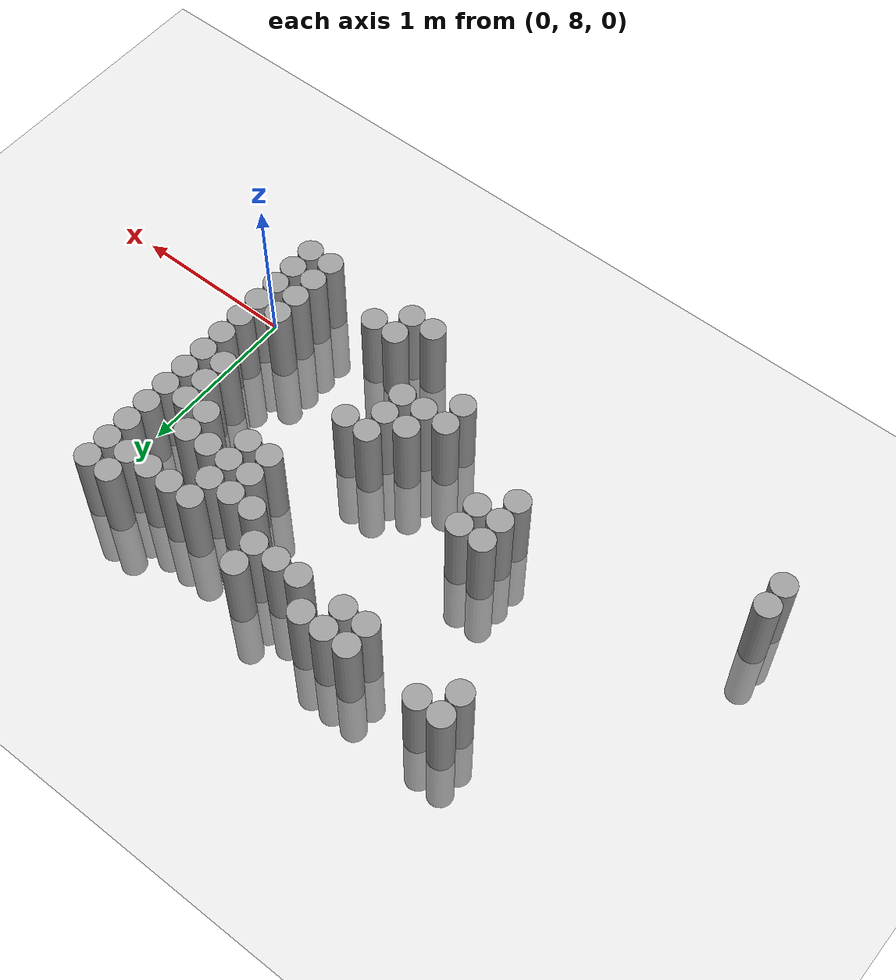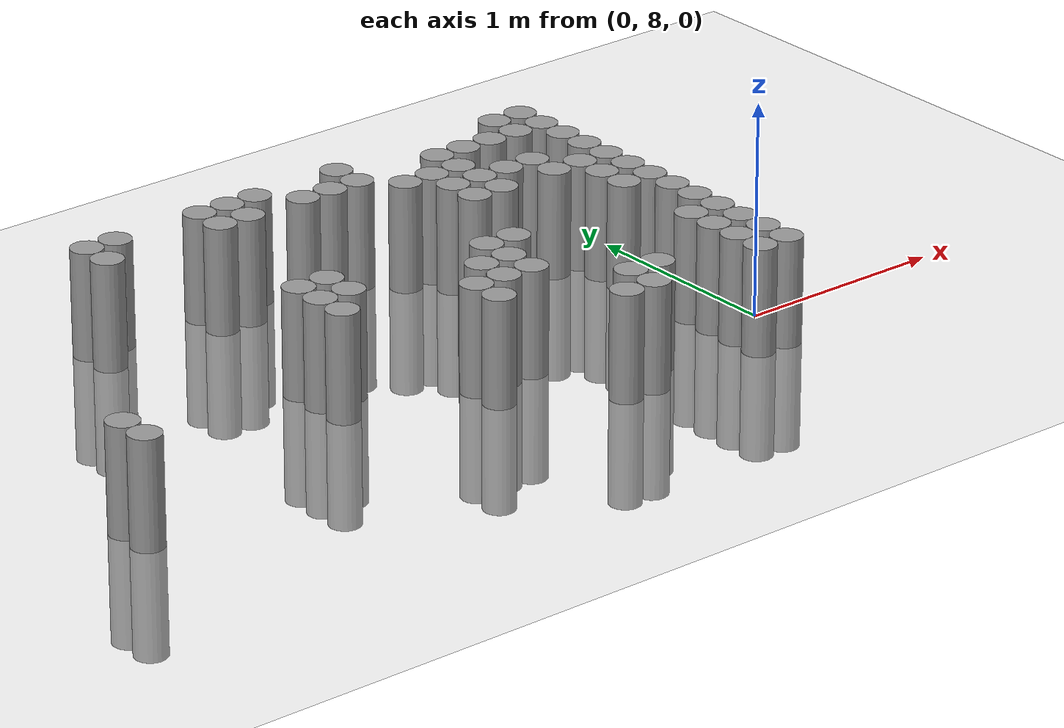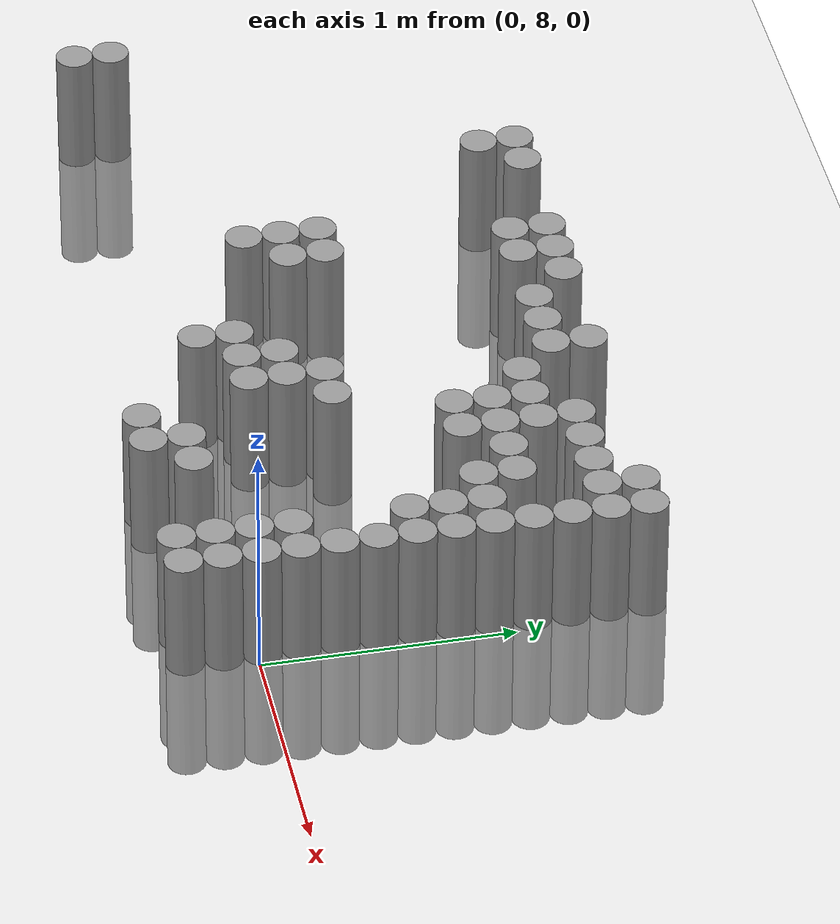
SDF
<sdf version="1.6">
 <world name="default">
  <model name="ground_plane">
   <static>1</static>
   <link name="link">
    <collision name="collision">
     <geometry><plane><normal>0 0 1</normal><size>100 100</size></plane></geometry>
     <surface><friction><ode><mu>100</mu><mu2>50</mu2></ode></friction></surface>
    </collision>
    <visual name="visual">
     <cast_shadows>0</cast_shadows>
     <geometry><plane><normal>0 0 1</normal><size>100 100</size></plane></geometry>
     <material>
      <script><uri>file://media/materials/scripts/gazebo.material</uri><name>Gazebo/Grey</name></script>
     </material>
    </visual>
   </link>
  </model>
  <model name="unit_cylinder_178">
   <pose>-3.375000 7.875000 0.000000 0.000000 0.000000 0.000000</pose>
   <link name="link">
    <inertial>
     <mass>1</mass>
     <inertia><ixx>0.145833</ixx><ixy>0</ixy><ixz>0</ixz><iyy>0.145833</iyy><iyz>0</iyz><izz>0.125</izz></inertia>
    </inertial>
    <collision name="collision">
     <geometry><cylinder><radius>0.075000</radius><length>1</length></cylinder></geometry>
    </collision>
    <visual name="visual">
     <geometry><cylinder><radius>0.075000</radius><length>1</length></cylinder></geometry>
     <material>
      <script><name>Gazebo/Grey</name><uri>file://media/materials/scripts/gazebo.material</uri></script>
     </material>
    </visual>
   </link>
  </model>
  <model name="unit_cylinder_179">
   <pose>-3.375000 8.025000 0.000000 0.000000 0.000000 0.000000</pose>
   <link name="link">
    <inertial>
     <mass>1</mass>
     <inertia><ixx>0.145833</ixx><ixy>0</ixy><ixz>0</ixz><iyy>0.145833</iyy><iyz>0</iyz><izz>0.125</izz></inertia>
    </inertial>
    <collision name="collision">
     <geometry><cylinder><radius>0.075000</radius><length>1</length></cylinder></geometry>
    </collision>
    <visual name="visual">
     <geometry><cylinder><radius>0.075000</radius><length>1</length></cylinder></geometry>
     <material>
      <script><name>Gazebo/Grey</name><uri>file://media/materials/scripts/gazebo.material</uri></script>
     </material>
    </visual>
   </link>
  </model>
  <model name="unit_cylinder_207">
   <pose>-2.475000 9.375000 0.000000 0.000000 0.000000 0.000000</pose>
   <link name="link">
    <inertial>
     <mass>1</mass>
     <inertia><ixx>0.145833</ixx><ixy>0</ixy><ixz>0</ixz><iyy>0.145833</iyy><iyz>0</iyz><izz>0.125</izz></inertia>
    </inertial>
    <collision name="collision">
     <geometry><cylinder><radius>0.075000</radius><length>1</length></cylinder></geometry>
    </collision>
    <visual name="visual">
     <geometry><cylinder><radius>0.075000</radius><length>1</length></cylinder></geometry>
     <material>
      <script><name>Gazebo/Grey</name><uri>file://media/materials/scripts/gazebo.material</uri></script>
     </material>
    </visual>
   </link>
  </model>
  <model name="unit_cylinder_208">
   <pose>-2.475000 9.525000 0.000000 0.000000 0.000000 0.000000</pose>
   <link name="link">
    <inertial>
     <mass>1</mass>
     <inertia><ixx>0.145833</ixx><ixy>0</ixy><ixz>0</ixz><iyy>0.145833</iyy><iyz>0</iyz><izz>0.125</izz></inertia>
    </inertial>
    <collision name="collision">
     <geometry><cylinder><radius>0.075000</radius><length>1</length></cylinder></geometry>
    </collision>
    <visual name="visual">
     <geometry><cylinder><radius>0.075000</radius><length>1</length></cylinder></geometry>
     <material>
      <script><name>Gazebo/Grey</name><uri>file://media/materials/scripts/gazebo.material</uri></script>
     </material>
    </visual>
   </link>
  </model>
  <model name="unit_cylinder_216">
   <pose>-2.325000 9.525000 0.000000 0.000000 0.000000 0.000000</pose>
   <link name="link">
    <inertial>
     <mass>1</mass>
     <inertia><ixx>0.145833</ixx><ixy>0</ixy><ixz>0</ixz><iyy>0.145833</iyy><iyz>0</iyz><izz>0.125</izz></inertia>
    </inertial>
    <collision name="collision">
     <geometry><cylinder><radius>0.075000</radius><length>1</length></cylinder></geometry>
    </collision>
    <visual name="visual">
     <geometry><cylinder><radius>0.075000</radius><length>1</length></cylinder></geometry>
     <material>
      <script><name>Gazebo/Grey</name><uri>file://media/materials/scripts/gazebo.material</uri></script>
     </material>
    </visual>
   </link>
  </model>
  <model name="unit_cylinder_221">
   <pose>-2.025000 8.325000 0.000000 0.000000 0.000000 0.000000</pose>
   <link name="link">
    <inertial>
     <mass>1</mass>
     <inertia><ixx>0.145833</ixx><ixy>0</ixy><ixz>0</ixz><iyy>0.145833</iyy><iyz>0</iyz><izz>0.125</izz></inertia>
    </inertial>
    <collision name="collision">
     <geometry><cylinder><radius>0.075000</radius><length>1</length></cylinder></geometry>
    </collision>
    <visual name="visual">
     <geometry><cylinder><radius>0.075000</radius><length>1</length></cylinder></geometry>
     <material>
      <script><name>Gazebo/Grey</name><uri>file://media/materials/scripts/gazebo.material</uri></script>
     </material>
    </visual>
   </link>
  </model>
  <model name="unit_cylinder_222">
   <pose>-2.025000 8.475000 0.000000 0.000000 0.000000 0.000000</pose>
   <link name="link">
    <inertial>
     <mass>1</mass>
     <inertia><ixx>0.145833</ixx><ixy>0</ixy><ixz>0</ixz><iyy>0.145833</iyy><iyz>0</iyz><izz>0.125</izz></inertia>
    </inertial>
    <collision name="collision">
     <geometry><cylinder><radius>0.075000</radius><length>1</length></cylinder></geometry>
    </collision>
    <visual name="visual">
     <geometry><cylinder><radius>0.075000</radius><length>1</length></cylinder></geometry>
     <material>
      <script><name>Gazebo/Grey</name><uri>file://media/materials/scripts/gazebo.material</uri></script>
     </material>
    </visual>
   </link>
  </model>
  <model name="unit_cylinder_223">
   <pose>-2.025000 8.625000 0.000000 0.000000 0.000000 0.000000</pose>
   <link name="link">
    <inertial>
     <mass>1</mass>
     <inertia><ixx>0.145833</ixx><ixy>0</ixy><ixz>0</ixz><iyy>0.145833</iyy><iyz>0</iyz><izz>0.125</izz></inertia>
    </inertial>
    <collision name="collision">
     <geometry><cylinder><radius>0.075000</radius><length>1</length></cylinder></geometry>
    </collision>
    <visual name="visual">
     <geometry><cylinder><radius>0.075000</radius><length>1</length></cylinder></geometry>
     <material>
      <script><name>Gazebo/Grey</name><uri>file://media/materials/scripts/gazebo.material</uri></script>
     </material>
    </visual>
   </link>
  </model>
  <model name="unit_cylinder_224">
   <pose>-1.875000 8.475000 0.000000 0.000000 0.000000 0.000000</pose>
   <link name="link">
    <inertial>
     <mass>1</mass>
     <inertia><ixx>0.145833</ixx><ixy>0</ixy><ixz>0</ixz><iyy>0.145833</iyy><iyz>0</iyz><izz>0.125</izz></inertia>
    </inertial>
    <collision name="collision">
     <geometry><cylinder><radius>0.075000</radius><length>1</length></cylinder></geometry>
    </collision>
    <visual name="visual">
     <geometry><cylinder><radius>0.075000</radius><length>1</length></cylinder></geometry>
     <material>
      <script><name>Gazebo/Grey</name><uri>file://media/materials/scripts/gazebo.material</uri></script>
     </material>
    </visual>
   </link>
  </model>
  <model name="unit_cylinder_225">
   <pose>-1.875000 8.625000 0.000000 0.000000 0.000000 0.000000</pose>
   <link name="link">
    <inertial>
     <mass>1</mass>
     <inertia><ixx>0.145833</ixx><ixy>0</ixy><ixz>0</ixz><iyy>0.145833</iyy><iyz>0</iyz><izz>0.125</izz></inertia>
    </inertial>
    <collision name="collision">
     <geometry><cylinder><radius>0.075000</radius><length>1</length></cylinder></geometry>
    </collision>
    <visual name="visual">
     <geometry><cylinder><radius>0.075000</radius><length>1</length></cylinder></geometry>
     <material>
      <script><name>Gazebo/Grey</name><uri>file://media/materials/scripts/gazebo.material</uri></script>
     </material>
    </visual>
   </link>
  </model>
  <model name="unit_cylinder_226">
   <pose>-1.875000 9.375000 0.000000 0.000000 0.000000 0.000000</pose>
   <link name="link">
    <inertial>
     <mass>1</mass>
     <inertia><ixx>0.145833</ixx><ixy>0</ixy><ixz>0</ixz><iyy>0.145833</iyy><iyz>0</iyz><izz>0.125</izz></inertia>
    </inertial>
    <collision name="collision">
     <geometry><cylinder><radius>0.075000</radius><length>1</length></cylinder></geometry>
    </collision>
    <visual name="visual">
     <geometry><cylinder><radius>0.075000</radius><length>1</length></cylinder></geometry>
     <material>
      <script><name>Gazebo/Grey</name><uri>file://media/materials/scripts/gazebo.material</uri></script>
     </material>
    </visual>
   </link>
  </model>
  <model name="unit_cylinder_227">
   <pose>-1.875000 9.525000 0.000000 0.000000 0.000000 0.000000</pose>
   <link name="link">
    <inertial>
     <mass>1</mass>
     <inertia><ixx>0.145833</ixx><ixy>0</ixy><ixz>0</ixz><iyy>0.145833</iyy><iyz>0</iyz><izz>0.125</izz></inertia>
    </inertial>
    <collision name="collision">
     <geometry><cylinder><radius>0.075000</radius><length>1</length></cylinder></geometry>
    </collision>
    <visual name="visual">
     <geometry><cylinder><radius>0.075000</radius><length>1</length></cylinder></geometry>
     <material>
      <script><name>Gazebo/Grey</name><uri>file://media/materials/scripts/gazebo.material</uri></script>
     </material>
    </visual>
   </link>
  </model>
  <model name="unit_cylinder_228">
   <pose>-1.725000 9.375000 0.000000 0.000000 0.000000 0.000000</pose>
   <link name="link">
    <inertial>
     <mass>1</mass>
     <inertia><ixx>0.145833</ixx><ixy>0</ixy><ixz>0</ixz><iyy>0.145833</iyy><iyz>0</iyz><izz>0.125</izz></inertia>
    </inertial>
    <collision name="collision">
     <geometry><cylinder><radius>0.075000</radius><length>1</length></cylinder></geometry>
    </collision>
    <visual name="visual">
     <geometry><cylinder><radius>0.075000</radius><length>1</length></cylinder></geometry>
     <material>
      <script><name>Gazebo/Grey</name><uri>file://media/materials/scripts/gazebo.material</uri></script>
     </material>
    </visual>
   </link>
  </model>
  <model name="unit_cylinder_229">
   <pose>-1.725000 9.525000 0.000000 0.000000 0.000000 0.000000</pose>
   <link name="link">
    <inertial>
     <mass>1</mass>
     <inertia><ixx>0.145833</ixx><ixy>0</ixy><ixz>0</ixz><iyy>0.145833</iyy><iyz>0</iyz><izz>0.125</izz></inertia>
    </inertial>
    <collision name="collision">
     <geometry><cylinder><radius>0.075000</radius><length>1</length></cylinder></geometry>
    </collision>
    <visual name="visual">
     <geometry><cylinder><radius>0.075000</radius><length>1</length></cylinder></geometry>
     <material>
      <script><name>Gazebo/Grey</name><uri>file://media/materials/scripts/gazebo.material</uri></script>
     </material>
    </visual>
   </link>
  </model>
  <model name="unit_cylinder_230">
   <pose>-1.575000 9.525000 0.000000 0.000000 0.000000 0.000000</pose>
   <link name="link">
    <inertial>
     <mass>1</mass>
     <inertia><ixx>0.145833</ixx><ixy>0</ixy><ixz>0</ixz><iyy>0.145833</iyy><iyz>0</iyz><izz>0.125</izz></inertia>
    </inertial>
    <collision name="collision">
     <geometry><cylinder><radius>0.075000</radius><length>1</length></cylinder></geometry>
    </collision>
    <visual name="visual">
     <geometry><cylinder><radius>0.075000</radius><length>1</length></cylinder></geometry>
     <material>
      <script><name>Gazebo/Grey</name><uri>file://media/materials/scripts/gazebo.material</uri></script>
     </material>
    </visual>
   </link>
  </model>
  <model name="unit_cylinder_232">
   <pose>-1.425000 8.025000 0.000000 0.000000 0.000000 0.000000</pose>
   <link name="link">
    <inertial>
     <mass>1</mass>
     <inertia><ixx>0.145833</ixx><ixy>0</ixy><ixz>0</ixz><iyy>0.145833</iyy><iyz>0</iyz><izz>0.125</izz></inertia>
    </inertial>
    <collision name="collision">
     <geometry><cylinder><radius>0.075000</radius><length>1</length></cylinder></geometry>
    </collision>
    <visual name="visual">
     <geometry><cylinder><radius>0.075000</radius><length>1</length></cylinder></geometry>
     <material>
      <script><name>Gazebo/Grey</name><uri>file://media/materials/scripts/gazebo.material</uri></script>
     </material>
    </visual>
   </link>
  </model>
  <model name="unit_cylinder_233">
   <pose>-1.425000 8.175000 0.000000 0.000000 0.000000 0.000000</pose>
   <link name="link">
    <inertial>
     <mass>1</mass>
     <inertia><ixx>0.145833</ixx><ixy>0</ixy><ixz>0</ixz><iyy>0.145833</iyy><iyz>0</iyz><izz>0.125</izz></inertia>
    </inertial>
    <collision name="collision">
     <geometry><cylinder><radius>0.075000</radius><length>1</length></cylinder></geometry>
    </collision>
    <visual name="visual">
     <geometry><cylinder><radius>0.075000</radius><length>1</length></cylinder></geometry>
     <material>
      <script><name>Gazebo/Grey</name><uri>file://media/materials/scripts/gazebo.material</uri></script>
     </material>
    </visual>
   </link>
  </model>
  <model name="unit_cylinder_234">
   <pose>-1.425000 9.375000 0.000000 0.000000 0.000000 0.000000</pose>
   <link name="link">
    <inertial>
     <mass>1</mass>
     <inertia><ixx>0.145833</ixx><ixy>0</ixy><ixz>0</ixz><iyy>0.145833</iyy><iyz>0</iyz><izz>0.125</izz></inertia>
    </inertial>
    <collision name="collision">
     <geometry><cylinder><radius>0.075000</radius><length>1</length></cylinder></geometry>
    </collision>
    <visual name="visual">
     <geometry><cylinder><radius>0.075000</radius><length>1</length></cylinder></geometry>
     <material>
      <script><name>Gazebo/Grey</name><uri>file://media/materials/scripts/gazebo.material</uri></script>
     </material>
    </visual>
   </link>
  </model>
  <model name="unit_cylinder_238">
   <pose>-1.275000 8.175000 0.000000 0.000000 0.000000 0.000000</pose>
   <link name="link">
    <inertial>
     <mass>1</mass>
     <inertia><ixx>0.145833</ixx><ixy>0</ixy><ixz>0</ixz><iyy>0.145833</iyy><iyz>0</iyz><izz>0.125</izz></inertia>
    </inertial>
    <collision name="collision">
     <geometry><cylinder><radius>0.075000</radius><length>1</length></cylinder></geometry>
    </collision>
    <visual name="visual">
     <geometry><cylinder><radius>0.075000</radius><length>1</length></cylinder></geometry>
     <material>
      <script><name>Gazebo/Grey</name><uri>file://media/materials/scripts/gazebo.material</uri></script>
     </material>
    </visual>
   </link>
  </model>
  <model name="unit_cylinder_239">
   <pose>-1.275000 8.325000 0.000000 0.000000 0.000000 0.000000</pose>
   <link name="link">
    <inertial>
     <mass>1</mass>
     <inertia><ixx>0.145833</ixx><ixy>0</ixy><ixz>0</ixz><iyy>0.145833</iyy><iyz>0</iyz><izz>0.125</izz></inertia>
    </inertial>
    <collision name="collision">
     <geometry><cylinder><radius>0.075000</radius><length>1</length></cylinder></geometry>
    </collision>
    <visual name="visual">
     <geometry><cylinder><radius>0.075000</radius><length>1</length></cylinder></geometry>
     <material>
      <script><name>Gazebo/Grey</name><uri>file://media/materials/scripts/gazebo.material</uri></script>
     </material>
    </visual>
   </link>
  </model>
  <model name="unit_cylinder_240">
   <pose>-1.275000 9.375000 0.000000 0.000000 0.000000 0.000000</pose>
   <link name="link">
    <inertial>
     <mass>1</mass>
     <inertia><ixx>0.145833</ixx><ixy>0</ixy><ixz>0</ixz><iyy>0.145833</iyy><iyz>0</iyz><izz>0.125</izz></inertia>
    </inertial>
    <collision name="collision">
     <geometry><cylinder><radius>0.075000</radius><length>1</length></cylinder></geometry>
    </collision>
    <visual name="visual">
     <geometry><cylinder><radius>0.075000</radius><length>1</length></cylinder></geometry>
     <material>
      <script><name>Gazebo/Grey</name><uri>file://media/materials/scripts/gazebo.material</uri></script>
     </material>
    </visual>
   </link>
  </model>
  <model name="unit_cylinder_244">
   <pose>-1.125000 8.175000 0.000000 0.000000 0.000000 0.000000</pose>
   <link name="link">
    <inertial>
     <mass>1</mass>
     <inertia><ixx>0.145833</ixx><ixy>0</ixy><ixz>0</ixz><iyy>0.145833</iyy><iyz>0</iyz><izz>0.125</izz></inertia>
    </inertial>
    <collision name="collision">
     <geometry><cylinder><radius>0.075000</radius><length>1</length></cylinder></geometry>
    </collision>
    <visual name="visual">
     <geometry><cylinder><radius>0.075000</radius><length>1</length></cylinder></geometry>
     <material>
      <script><name>Gazebo/Grey</name><uri>file://media/materials/scripts/gazebo.material</uri></script>
     </material>
    </visual>
   </link>
  </model>
  <model name="unit_cylinder_245">
   <pose>-1.125000 8.325000 0.000000 0.000000 0.000000 0.000000</pose>
   <link name="link">
    <inertial>
     <mass>1</mass>
     <inertia><ixx>0.145833</ixx><ixy>0</ixy><ixz>0</ixz><iyy>0.145833</iyy><iyz>0</iyz><izz>0.125</izz></inertia>
    </inertial>
    <collision name="collision">
     <geometry><cylinder><radius>0.075000</radius><length>1</length></cylinder></geometry>
    </collision>
    <visual name="visual">
     <geometry><cylinder><radius>0.075000</radius><length>1</length></cylinder></geometry>
     <material>
      <script><name>Gazebo/Grey</name><uri>file://media/materials/scripts/gazebo.material</uri></script>
     </material>
    </visual>
   </link>
  </model>
  <model name="unit_cylinder_246">
   <pose>-1.125000 8.475000 0.000000 0.000000 0.000000 0.000000</pose>
   <link name="link">
    <inertial>
     <mass>1</mass>
     <inertia><ixx>0.145833</ixx><ixy>0</ixy><ixz>0</ixz><iyy>0.145833</iyy><iyz>0</iyz><izz>0.125</izz></inertia>
    </inertial>
    <collision name="collision">
     <geometry><cylinder><radius>0.075000</radius><length>1</length></cylinder></geometry>
    </collision>
    <visual name="visual">
     <geometry><cylinder><radius>0.075000</radius><length>1</length></cylinder></geometry>
     <material>
      <script><name>Gazebo/Grey</name><uri>file://media/materials/scripts/gazebo.material</uri></script>
     </material>
    </visual>
   </link>
  </model>
  <model name="unit_cylinder_247">
   <pose>-1.125000 9.375000 0.000000 0.000000 0.000000 0.000000</pose>
   <link name="link">
    <inertial>
     <mass>1</mass>
     <inertia><ixx>0.145833</ixx><ixy>0</ixy><ixz>0</ixz><iyy>0.145833</iyy><iyz>0</iyz><izz>0.125</izz></inertia>
    </inertial>
    <collision name="collision">
     <geometry><cylinder><radius>0.075000</radius><length>1</length></cylinder></geometry>
    </collision>
    <visual name="visual">
     <geometry><cylinder><radius>0.075000</radius><length>1</length></cylinder></geometry>
     <material>
      <script><name>Gazebo/Grey</name><uri>file://media/materials/scripts/gazebo.material</uri></script>
     </material>
    </visual>
   </link>
  </model>
  <model name="unit_cylinder_248">
   <pose>-1.125000 9.525000 0.000000 0.000000 0.000000 0.000000</pose>
   <link name="link">
    <inertial>
     <mass>1</mass>
     <inertia><ixx>0.145833</ixx><ixy>0</ixy><ixz>0</ixz><iyy>0.145833</iyy><iyz>0</iyz><izz>0.125</izz></inertia>
    </inertial>
    <collision name="collision">
     <geometry><cylinder><radius>0.075000</radius><length>1</length></cylinder></geometry>
    </collision>
    <visual name="visual">
     <geometry><cylinder><radius>0.075000</radius><length>1</length></cylinder></geometry>
     <material>
      <script><name>Gazebo/Grey</name><uri>file://media/materials/scripts/gazebo.material</uri></script>
     </material>
    </visual>
   </link>
  </model>
  <model name="unit_cylinder_253">
   <pose>-0.975000 7.725000 0.000000 0.000000 0.000000 0.000000</pose>
   <link name="link">
    <inertial>
     <mass>1</mass>
     <inertia><ixx>0.145833</ixx><ixy>0</ixy><ixz>0</ixz><iyy>0.145833</iyy><iyz>0</iyz><izz>0.125</izz></inertia>
    </inertial>
    <collision name="collision">
     <geometry><cylinder><radius>0.075000</radius><length>1</length></cylinder></geometry>
    </collision>
    <visual name="visual">
     <geometry><cylinder><radius>0.075000</radius><length>1</length></cylinder></geometry>
     <material>
      <script><name>Gazebo/Grey</name><uri>file://media/materials/scripts/gazebo.material</uri></script>
     </material>
    </visual>
   </link>
  </model>
  <model name="unit_cylinder_254">
   <pose>-0.975000 8.475000 0.000000 0.000000 0.000000 0.000000</pose>
   <link name="link">
    <inertial>
     <mass>1</mass>
     <inertia><ixx>0.145833</ixx><ixy>0</ixy><ixz>0</ixz><iyy>0.145833</iyy><iyz>0</iyz><izz>0.125</izz></inertia>
    </inertial>
    <collision name="collision">
     <geometry><cylinder><radius>0.075000</radius><length>1</length></cylinder></geometry>
    </collision>
    <visual name="visual">
     <geometry><cylinder><radius>0.075000</radius><length>1</length></cylinder></geometry>
     <material>
      <script><name>Gazebo/Grey</name><uri>file://media/materials/scripts/gazebo.material</uri></script>
     </material>
    </visual>
   </link>
  </model>
  <model name="unit_cylinder_255">
   <pose>-0.975000 9.225000 0.000000 0.000000 0.000000 0.000000</pose>
   <link name="link">
    <inertial>
     <mass>1</mass>
     <inertia><ixx>0.145833</ixx><ixy>0</ixy><ixz>0</ixz><iyy>0.145833</iyy><iyz>0</iyz><izz>0.125</izz></inertia>
    </inertial>
    <collision name="collision">
     <geometry><cylinder><radius>0.075000</radius><length>1</length></cylinder></geometry>
    </collision>
    <visual name="visual">
     <geometry><cylinder><radius>0.075000</radius><length>1</length></cylinder></geometry>
     <material>
      <script><name>Gazebo/Grey</name><uri>file://media/materials/scripts/gazebo.material</uri></script>
     </material>
    </visual>
   </link>
  </model>
  <model name="unit_cylinder_262">
   <pose>-0.825000 7.725000 0.000000 0.000000 0.000000 0.000000</pose>
   <link name="link">
    <inertial>
     <mass>1</mass>
     <inertia><ixx>0.145833</ixx><ixy>0</ixy><ixz>0</ixz><iyy>0.145833</iyy><iyz>0</iyz><izz>0.125</izz></inertia>
    </inertial>
    <collision name="collision">
     <geometry><cylinder><radius>0.075000</radius><length>1</length></cylinder></geometry>
    </collision>
    <visual name="visual">
     <geometry><cylinder><radius>0.075000</radius><length>1</length></cylinder></geometry>
     <material>
      <script><name>Gazebo/Grey</name><uri>file://media/materials/scripts/gazebo.material</uri></script>
     </material>
    </visual>
   </link>
  </model>
  <model name="unit_cylinder_263">
   <pose>-0.825000 7.875000 0.000000 0.000000 0.000000 0.000000</pose>
   <link name="link">
    <inertial>
     <mass>1</mass>
     <inertia><ixx>0.145833</ixx><ixy>0</ixy><ixz>0</ixz><iyy>0.145833</iyy><iyz>0</iyz><izz>0.125</izz></inertia>
    </inertial>
    <collision name="collision">
     <geometry><cylinder><radius>0.075000</radius><length>1</length></cylinder></geometry>
    </collision>
    <visual name="visual">
     <geometry><cylinder><radius>0.075000</radius><length>1</length></cylinder></geometry>
     <material>
      <script><name>Gazebo/Grey</name><uri>file://media/materials/scripts/gazebo.material</uri></script>
     </material>
    </visual>
   </link>
  </model>
  <model name="unit_cylinder_264">
   <pose>-0.825000 8.925000 0.000000 0.000000 0.000000 0.000000</pose>
   <link name="link">
    <inertial>
     <mass>1</mass>
     <inertia><ixx>0.145833</ixx><ixy>0</ixy><ixz>0</ixz><iyy>0.145833</iyy><iyz>0</iyz><izz>0.125</izz></inertia>
    </inertial>
    <collision name="collision">
     <geometry><cylinder><radius>0.075000</radius><length>1</length></cylinder></geometry>
    </collision>
    <visual name="visual">
     <geometry><cylinder><radius>0.075000</radius><length>1</length></cylinder></geometry>
     <material>
      <script><name>Gazebo/Grey</name><uri>file://media/materials/scripts/gazebo.material</uri></script>
     </material>
    </visual>
   </link>
  </model>
  <model name="unit_cylinder_265">
   <pose>-0.825000 9.075000 0.000000 0.000000 0.000000 0.000000</pose>
   <link name="link">
    <inertial>
     <mass>1</mass>
     <inertia><ixx>0.145833</ixx><ixy>0</ixy><ixz>0</ixz><iyy>0.145833</iyy><iyz>0</iyz><izz>0.125</izz></inertia>
    </inertial>
    <collision name="collision">
     <geometry><cylinder><radius>0.075000</radius><length>1</length></cylinder></geometry>
    </collision>
    <visual name="visual">
     <geometry><cylinder><radius>0.075000</radius><length>1</length></cylinder></geometry>
     <material>
      <script><name>Gazebo/Grey</name><uri>file://media/materials/scripts/gazebo.material</uri></script>
     </material>
    </visual>
   </link>
  </model>
  <model name="unit_cylinder_266">
   <pose>-0.825000 9.225000 0.000000 0.000000 0.000000 0.000000</pose>
   <link name="link">
    <inertial>
     <mass>1</mass>
     <inertia><ixx>0.145833</ixx><ixy>0</ixy><ixz>0</ixz><iyy>0.145833</iyy><iyz>0</iyz><izz>0.125</izz></inertia>
    </inertial>
    <collision name="collision">
     <geometry><cylinder><radius>0.075000</radius><length>1</length></cylinder></geometry>
    </collision>
    <visual name="visual">
     <geometry><cylinder><radius>0.075000</radius><length>1</length></cylinder></geometry>
     <material>
      <script><name>Gazebo/Grey</name><uri>file://media/materials/scripts/gazebo.material</uri></script>
     </material>
    </visual>
   </link>
  </model>
  <model name="unit_cylinder_268">
   <pose>-0.675000 7.875000 0.000000 0.000000 0.000000 0.000000</pose>
   <link name="link">
    <inertial>
     <mass>1</mass>
     <inertia><ixx>0.145833</ixx><ixy>0</ixy><ixz>0</ixz><iyy>0.145833</iyy><iyz>0</iyz><izz>0.125</izz></inertia>
    </inertial>
    <collision name="collision">
     <geometry><cylinder><radius>0.075000</radius><length>1</length></cylinder></geometry>
    </collision>
    <visual name="visual">
     <geometry><cylinder><radius>0.075000</radius><length>1</length></cylinder></geometry>
     <material>
      <script><name>Gazebo/Grey</name><uri>file://media/materials/scripts/gazebo.material</uri></script>
     </material>
    </visual>
   </link>
  </model>
  <model name="unit_cylinder_269">
   <pose>-0.675000 8.925000 0.000000 0.000000 0.000000 0.000000</pose>
   <link name="link">
    <inertial>
     <mass>1</mass>
     <inertia><ixx>0.145833</ixx><ixy>0</ixy><ixz>0</ixz><iyy>0.145833</iyy><iyz>0</iyz><izz>0.125</izz></inertia>
    </inertial>
    <collision name="collision">
     <geometry><cylinder><radius>0.075000</radius><length>1</length></cylinder></geometry>
    </collision>
    <visual name="visual">
     <geometry><cylinder><radius>0.075000</radius><length>1</length></cylinder></geometry>
     <material>
      <script><name>Gazebo/Grey</name><uri>file://media/materials/scripts/gazebo.material</uri></script>
     </material>
    </visual>
   </link>
  </model>
  <model name="unit_cylinder_270">
   <pose>-0.675000 9.075000 0.000000 0.000000 0.000000 0.000000</pose>
   <link name="link">
    <inertial>
     <mass>1</mass>
     <inertia><ixx>0.145833</ixx><ixy>0</ixy><ixz>0</ixz><iyy>0.145833</iyy><iyz>0</iyz><izz>0.125</izz></inertia>
    </inertial>
    <collision name="collision">
     <geometry><cylinder><radius>0.075000</radius><length>1</length></cylinder></geometry>
    </collision>
    <visual name="visual">
     <geometry><cylinder><radius>0.075000</radius><length>1</length></cylinder></geometry>
     <material>
      <script><name>Gazebo/Grey</name><uri>file://media/materials/scripts/gazebo.material</uri></script>
     </material>
    </visual>
   </link>
  </model>
  <model name="unit_cylinder_271">
   <pose>-0.675000 9.225000 0.000000 0.000000 0.000000 0.000000</pose>
   <link name="link">
    <inertial>
     <mass>1</mass>
     <inertia><ixx>0.145833</ixx><ixy>0</ixy><ixz>0</ixz><iyy>0.145833</iyy><iyz>0</iyz><izz>0.125</izz></inertia>
    </inertial>
    <collision name="collision">
     <geometry><cylinder><radius>0.075000</radius><length>1</length></cylinder></geometry>
    </collision>
    <visual name="visual">
     <geometry><cylinder><radius>0.075000</radius><length>1</length></cylinder></geometry>
     <material>
      <script><name>Gazebo/Grey</name><uri>file://media/materials/scripts/gazebo.material</uri></script>
     </material>
    </visual>
   </link>
  </model>
  <model name="unit_cylinder_272">
   <pose>-0.675000 9.375000 0.000000 0.000000 0.000000 0.000000</pose>
   <link name="link">
    <inertial>
     <mass>1</mass>
     <inertia><ixx>0.145833</ixx><ixy>0</ixy><ixz>0</ixz><iyy>0.145833</iyy><iyz>0</iyz><izz>0.125</izz></inertia>
    </inertial>
    <collision name="collision">
     <geometry><cylinder><radius>0.075000</radius><length>1</length></cylinder></geometry>
    </collision>
    <visual name="visual">
     <geometry><cylinder><radius>0.075000</radius><length>1</length></cylinder></geometry>
     <material>
      <script><name>Gazebo/Grey</name><uri>file://media/materials/scripts/gazebo.material</uri></script>
     </material>
    </visual>
   </link>
  </model>
  <model name="unit_cylinder_274">
   <pose>-0.525000 9.075000 0.000000 0.000000 0.000000 0.000000</pose>
   <link name="link">
    <inertial>
     <mass>1</mass>
     <inertia><ixx>0.145833</ixx><ixy>0</ixy><ixz>0</ixz><iyy>0.145833</iyy><iyz>0</iyz><izz>0.125</izz></inertia>
    </inertial>
    <collision name="collision">
     <geometry><cylinder><radius>0.075000</radius><length>1</length></cylinder></geometry>
    </collision>
    <visual name="visual">
     <geometry><cylinder><radius>0.075000</radius><length>1</length></cylinder></geometry>
     <material>
      <script><name>Gazebo/Grey</name><uri>file://media/materials/scripts/gazebo.material</uri></script>
     </material>
    </visual>
   </link>
  </model>
  <model name="unit_cylinder_275">
   <pose>-0.525000 9.375000 0.000000 0.000000 0.000000 0.000000</pose>
   <link name="link">
    <inertial>
     <mass>1</mass>
     <inertia><ixx>0.145833</ixx><ixy>0</ixy><ixz>0</ixz><iyy>0.145833</iyy><iyz>0</iyz><izz>0.125</izz></inertia>
    </inertial>
    <collision name="collision">
     <geometry><cylinder><radius>0.075000</radius><length>1</length></cylinder></geometry>
    </collision>
    <visual name="visual">
     <geometry><cylinder><radius>0.075000</radius><length>1</length></cylinder></geometry>
     <material>
      <script><name>Gazebo/Grey</name><uri>file://media/materials/scripts/gazebo.material</uri></script>
     </material>
    </visual>
   </link>
  </model>
  <model name="unit_cylinder_281">
   <pose>-0.375000 8.925000 0.000000 0.000000 0.000000 0.000000</pose>
   <link name="link">
    <inertial>
     <mass>1</mass>
     <inertia><ixx>0.145833</ixx><ixy>0</ixy><ixz>0</ixz><iyy>0.145833</iyy><iyz>0</iyz><izz>0.125</izz></inertia>
    </inertial>
    <collision name="collision">
     <geometry><cylinder><radius>0.075000</radius><length>1</length></cylinder></geometry>
    </collision>
    <visual name="visual">
     <geometry><cylinder><radius>0.075000</radius><length>1</length></cylinder></geometry>
     <material>
      <script><name>Gazebo/Grey</name><uri>file://media/materials/scripts/gazebo.material</uri></script>
     </material>
    </visual>
   </link>
  </model>
  <model name="unit_cylinder_282">
   <pose>-0.375000 9.075000 0.000000 0.000000 0.000000 0.000000</pose>
   <link name="link">
    <inertial>
     <mass>1</mass>
     <inertia><ixx>0.145833</ixx><ixy>0</ixy><ixz>0</ixz><iyy>0.145833</iyy><iyz>0</iyz><izz>0.125</izz></inertia>
    </inertial>
    <collision name="collision">
     <geometry><cylinder><radius>0.075000</radius><length>1</length></cylinder></geometry>
    </collision>
    <visual name="visual">
     <geometry><cylinder><radius>0.075000</radius><length>1</length></cylinder></geometry>
     <material>
      <script><name>Gazebo/Grey</name><uri>file://media/materials/scripts/gazebo.material</uri></script>
     </material>
    </visual>
   </link>
  </model>
  <model name="unit_cylinder_283">
   <pose>-0.375000 9.375000 0.000000 0.000000 0.000000 0.000000</pose>
   <link name="link">
    <inertial>
     <mass>1</mass>
     <inertia><ixx>0.145833</ixx><ixy>0</ixy><ixz>0</ixz><iyy>0.145833</iyy><iyz>0</iyz><izz>0.125</izz></inertia>
    </inertial>
    <collision name="collision">
     <geometry><cylinder><radius>0.075000</radius><length>1</length></cylinder></geometry>
    </collision>
    <visual name="visual">
     <geometry><cylinder><radius>0.075000</radius><length>1</length></cylinder></geometry>
     <material>
      <script><name>Gazebo/Grey</name><uri>file://media/materials/scripts/gazebo.material</uri></script>
     </material>
    </visual>
   </link>
  </model>
  <model name="unit_cylinder_291">
   <pose>-0.225000 7.725000 0.000000 0.000000 0.000000 0.000000</pose>
   <link name="link">
    <inertial>
     <mass>1</mass>
     <inertia><ixx>0.145833</ixx><ixy>0</ixy><ixz>0</ixz><iyy>0.145833</iyy><iyz>0</iyz><izz>0.125</izz></inertia>
    </inertial>
    <collision name="collision">
     <geometry><cylinder><radius>0.075000</radius><length>1</length></cylinder></geometry>
    </collision>
    <visual name="visual">
     <geometry><cylinder><radius>0.075000</radius><length>1</length></cylinder></geometry>
     <material>
      <script><name>Gazebo/Grey</name><uri>file://media/materials/scripts/gazebo.material</uri></script>
     </material>
    </visual>
   </link>
  </model>
  <model name="unit_cylinder_292">
   <pose>-0.225000 7.875000 0.000000 0.000000 0.000000 0.000000</pose>
   <link name="link">
    <inertial>
     <mass>1</mass>
     <inertia><ixx>0.145833</ixx><ixy>0</ixy><ixz>0</ixz><iyy>0.145833</iyy><iyz>0</iyz><izz>0.125</izz></inertia>
    </inertial>
    <collision name="collision">
     <geometry><cylinder><radius>0.075000</radius><length>1</length></cylinder></geometry>
    </collision>
    <visual name="visual">
     <geometry><cylinder><radius>0.075000</radius><length>1</length></cylinder></geometry>
     <material>
      <script><name>Gazebo/Grey</name><uri>file://media/materials/scripts/gazebo.material</uri></script>
     </material>
    </visual>
   </link>
  </model>
  <model name="unit_cylinder_293">
   <pose>-0.225000 8.025000 0.000000 0.000000 0.000000 0.000000</pose>
   <link name="link">
    <inertial>
     <mass>1</mass>
     <inertia><ixx>0.145833</ixx><ixy>0</ixy><ixz>0</ixz><iyy>0.145833</iyy><iyz>0</iyz><izz>0.125</izz></inertia>
    </inertial>
    <collision name="collision">
     <geometry><cylinder><radius>0.075000</radius><length>1</length></cylinder></geometry>
    </collision>
    <visual name="visual">
     <geometry><cylinder><radius>0.075000</radius><length>1</length></cylinder></geometry>
     <material>
      <script><name>Gazebo/Grey</name><uri>file://media/materials/scripts/gazebo.material</uri></script>
     </material>
    </visual>
   </link>
  </model>
  <model name="unit_cylinder_294">
   <pose>-0.225000 8.175000 0.000000 0.000000 0.000000 0.000000</pose>
   <link name="link">
    <inertial>
     <mass>1</mass>
     <inertia><ixx>0.145833</ixx><ixy>0</ixy><ixz>0</ixz><iyy>0.145833</iyy><iyz>0</iyz><izz>0.125</izz></inertia>
    </inertial>
    <collision name="collision">
     <geometry><cylinder><radius>0.075000</radius><length>1</length></cylinder></geometry>
    </collision>
    <visual name="visual">
     <geometry><cylinder><radius>0.075000</radius><length>1</length></cylinder></geometry>
     <material>
      <script><name>Gazebo/Grey</name><uri>file://media/materials/scripts/gazebo.material</uri></script>
     </material>
    </visual>
   </link>
  </model>
  <model name="unit_cylinder_295">
   <pose>-0.225000 8.625000 0.000000 0.000000 0.000000 0.000000</pose>
   <link name="link">
    <inertial>
     <mass>1</mass>
     <inertia><ixx>0.145833</ixx><ixy>0</ixy><ixz>0</ixz><iyy>0.145833</iyy><iyz>0</iyz><izz>0.125</izz></inertia>
    </inertial>
    <collision name="collision">
     <geometry><cylinder><radius>0.075000</radius><length>1</length></cylinder></geometry>
    </collision>
    <visual name="visual">
     <geometry><cylinder><radius>0.075000</radius><length>1</length></cylinder></geometry>
     <material>
      <script><name>Gazebo/Grey</name><uri>file://media/materials/scripts/gazebo.material</uri></script>
     </material>
    </visual>
   </link>
  </model>
  <model name="unit_cylinder_296">
   <pose>-0.225000 8.775000 0.000000 0.000000 0.000000 0.000000</pose>
   <link name="link">
    <inertial>
     <mass>1</mass>
     <inertia><ixx>0.145833</ixx><ixy>0</ixy><ixz>0</ixz><iyy>0.145833</iyy><iyz>0</iyz><izz>0.125</izz></inertia>
    </inertial>
    <collision name="collision">
     <geometry><cylinder><radius>0.075000</radius><length>1</length></cylinder></geometry>
    </collision>
    <visual name="visual">
     <geometry><cylinder><radius>0.075000</radius><length>1</length></cylinder></geometry>
     <material>
      <script><name>Gazebo/Grey</name><uri>file://media/materials/scripts/gazebo.material</uri></script>
     </material>
    </visual>
   </link>
  </model>
  <model name="unit_cylinder_297">
   <pose>-0.225000 8.925000 0.000000 0.000000 0.000000 0.000000</pose>
   <link name="link">
    <inertial>
     <mass>1</mass>
     <inertia><ixx>0.145833</ixx><ixy>0</ixy><ixz>0</ixz><iyy>0.145833</iyy><iyz>0</iyz><izz>0.125</izz></inertia>
    </inertial>
    <collision name="collision">
     <geometry><cylinder><radius>0.075000</radius><length>1</length></cylinder></geometry>
    </collision>
    <visual name="visual">
     <geometry><cylinder><radius>0.075000</radius><length>1</length></cylinder></geometry>
     <material>
      <script><name>Gazebo/Grey</name><uri>file://media/materials/scripts/gazebo.material</uri></script>
     </material>
    </visual>
   </link>
  </model>
  <model name="unit_cylinder_298">
   <pose>-0.225000 9.375000 0.000000 0.000000 0.000000 0.000000</pose>
   <link name="link">
    <inertial>
     <mass>1</mass>
     <inertia><ixx>0.145833</ixx><ixy>0</ixy><ixz>0</ixz><iyy>0.145833</iyy><iyz>0</iyz><izz>0.125</izz></inertia>
    </inertial>
    <collision name="collision">
     <geometry><cylinder><radius>0.075000</radius><length>1</length></cylinder></geometry>
    </collision>
    <visual name="visual">
     <geometry><cylinder><radius>0.075000</radius><length>1</length></cylinder></geometry>
     <material>
      <script><name>Gazebo/Grey</name><uri>file://media/materials/scripts/gazebo.material</uri></script>
     </material>
    </visual>
   </link>
  </model>
  <model name="unit_cylinder_299">
   <pose>-0.225000 9.525000 0.000000 0.000000 0.000000 0.000000</pose>
   <link name="link">
    <inertial>
     <mass>1</mass>
     <inertia><ixx>0.145833</ixx><ixy>0</ixy><ixz>0</ixz><iyy>0.145833</iyy><iyz>0</iyz><izz>0.125</izz></inertia>
    </inertial>
    <collision name="collision">
     <geometry><cylinder><radius>0.075000</radius><length>1</length></cylinder></geometry>
    </collision>
    <visual name="visual">
     <geometry><cylinder><radius>0.075000</radius><length>1</length></cylinder></geometry>
     <material>
      <script><name>Gazebo/Grey</name><uri>file://media/materials/scripts/gazebo.material</uri></script>
     </material>
    </visual>
   </link>
  </model>
  <model name="unit_cylinder_317">
   <pose>-0.075000 7.725000 0.000000 0.000000 0.000000 0.000000</pose>
   <link name="link">
    <inertial>
     <mass>1</mass>
     <inertia><ixx>0.145833</ixx><ixy>0</ixy><ixz>0</ixz><iyy>0.145833</iyy><iyz>0</iyz><izz>0.125</izz></inertia>
    </inertial>
    <collision name="collision">
     <geometry><cylinder><radius>0.075000</radius><length>1</length></cylinder></geometry>
    </collision>
    <visual name="visual">
     <geometry><cylinder><radius>0.075000</radius><length>1</length></cylinder></geometry>
     <material>
      <script><name>Gazebo/Grey</name><uri>file://media/materials/scripts/gazebo.material</uri></script>
     </material>
    </visual>
   </link>
  </model>
  <model name="unit_cylinder_318">
   <pose>-0.075000 7.875000 0.000000 0.000000 0.000000 0.000000</pose>
   <link name="link">
    <inertial>
     <mass>1</mass>
     <inertia><ixx>0.145833</ixx><ixy>0</ixy><ixz>0</ixz><iyy>0.145833</iyy><iyz>0</iyz><izz>0.125</izz></inertia>
    </inertial>
    <collision name="collision">
     <geometry><cylinder><radius>0.075000</radius><length>1</length></cylinder></geometry>
    </collision>
    <visual name="visual">
     <geometry><cylinder><radius>0.075000</radius><length>1</length></cylinder></geometry>
     <material>
      <script><name>Gazebo/Grey</name><uri>file://media/materials/scripts/gazebo.material</uri></script>
     </material>
    </visual>
   </link>
  </model>
  <model name="unit_cylinder_319">
   <pose>-0.075000 8.025000 0.000000 0.000000 0.000000 0.000000</pose>
   <link name="link">
    <inertial>
     <mass>1</mass>
     <inertia><ixx>0.145833</ixx><ixy>0</ixy><ixz>0</ixz><iyy>0.145833</iyy><iyz>0</iyz><izz>0.125</izz></inertia>
    </inertial>
    <collision name="collision">
     <geometry><cylinder><radius>0.075000</radius><length>1</length></cylinder></geometry>
    </collision>
    <visual name="visual">
     <geometry><cylinder><radius>0.075000</radius><length>1</length></cylinder></geometry>
     <material>
      <script><name>Gazebo/Grey</name><uri>file://media/materials/scripts/gazebo.material</uri></script>
     </material>
    </visual>
   </link>
  </model>
  <model name="unit_cylinder_320">
   <pose>-0.075000 8.175000 0.000000 0.000000 0.000000 0.000000</pose>
   <link name="link">
    <inertial>
     <mass>1</mass>
     <inertia><ixx>0.145833</ixx><ixy>0</ixy><ixz>0</ixz><iyy>0.145833</iyy><iyz>0</iyz><izz>0.125</izz></inertia>
    </inertial>
    <collision name="collision">
     <geometry><cylinder><radius>0.075000</radius><length>1</length></cylinder></geometry>
    </collision>
    <visual name="visual">
     <geometry><cylinder><radius>0.075000</radius><length>1</length></cylinder></geometry>
     <material>
      <script><name>Gazebo/Grey</name><uri>file://media/materials/scripts/gazebo.material</uri></script>
     </material>
    </visual>
   </link>
  </model>
  <model name="unit_cylinder_321">
   <pose>-0.075000 8.325000 0.000000 0.000000 0.000000 0.000000</pose>
   <link name="link">
    <inertial>
     <mass>1</mass>
     <inertia><ixx>0.145833</ixx><ixy>0</ixy><ixz>0</ixz><iyy>0.145833</iyy><iyz>0</iyz><izz>0.125</izz></inertia>
    </inertial>
    <collision name="collision">
     <geometry><cylinder><radius>0.075000</radius><length>1</length></cylinder></geometry>
    </collision>
    <visual name="visual">
     <geometry><cylinder><radius>0.075000</radius><length>1</length></cylinder></geometry>
     <material>
      <script><name>Gazebo/Grey</name><uri>file://media/materials/scripts/gazebo.material</uri></script>
     </material>
    </visual>
   </link>
  </model>
  <model name="unit_cylinder_322">
   <pose>-0.075000 8.475000 0.000000 0.000000 0.000000 0.000000</pose>
   <link name="link">
    <inertial>
     <mass>1</mass>
     <inertia><ixx>0.145833</ixx><ixy>0</ixy><ixz>0</ixz><iyy>0.145833</iyy><iyz>0</iyz><izz>0.125</izz></inertia>
    </inertial>
    <collision name="collision">
     <geometry><cylinder><radius>0.075000</radius><length>1</length></cylinder></geometry>
    </collision>
    <visual name="visual">
     <geometry><cylinder><radius>0.075000</radius><length>1</length></cylinder></geometry>
     <material>
      <script><name>Gazebo/Grey</name><uri>file://media/materials/scripts/gazebo.material</uri></script>
     </material>
    </visual>
   </link>
  </model>
  <model name="unit_cylinder_323">
   <pose>-0.075000 8.625000 0.000000 0.000000 0.000000 0.000000</pose>
   <link name="link">
    <inertial>
     <mass>1</mass>
     <inertia><ixx>0.145833</ixx><ixy>0</ixy><ixz>0</ixz><iyy>0.145833</iyy><iyz>0</iyz><izz>0.125</izz></inertia>
    </inertial>
    <collision name="collision">
     <geometry><cylinder><radius>0.075000</radius><length>1</length></cylinder></geometry>
    </collision>
    <visual name="visual">
     <geometry><cylinder><radius>0.075000</radius><length>1</length></cylinder></geometry>
     <material>
      <script><name>Gazebo/Grey</name><uri>file://media/materials/scripts/gazebo.material</uri></script>
     </material>
    </visual>
   </link>
  </model>
  <model name="unit_cylinder_324">
   <pose>-0.075000 8.775000 0.000000 0.000000 0.000000 0.000000</pose>
   <link name="link">
    <inertial>
     <mass>1</mass>
     <inertia><ixx>0.145833</ixx><ixy>0</ixy><ixz>0</ixz><iyy>0.145833</iyy><iyz>0</iyz><izz>0.125</izz></inertia>
    </inertial>
    <collision name="collision">
     <geometry><cylinder><radius>0.075000</radius><length>1</length></cylinder></geometry>
    </collision>
    <visual name="visual">
     <geometry><cylinder><radius>0.075000</radius><length>1</length></cylinder></geometry>
     <material>
      <script><name>Gazebo/Grey</name><uri>file://media/materials/scripts/gazebo.material</uri></script>
     </material>
    </visual>
   </link>
  </model>
  <model name="unit_cylinder_325">
   <pose>-0.075000 8.925000 0.000000 0.000000 0.000000 0.000000</pose>
   <link name="link">
    <inertial>
     <mass>1</mass>
     <inertia><ixx>0.145833</ixx><ixy>0</ixy><ixz>0</ixz><iyy>0.145833</iyy><iyz>0</iyz><izz>0.125</izz></inertia>
    </inertial>
    <collision name="collision">
     <geometry><cylinder><radius>0.075000</radius><length>1</length></cylinder></geometry>
    </collision>
    <visual name="visual">
     <geometry><cylinder><radius>0.075000</radius><length>1</length></cylinder></geometry>
     <material>
      <script><name>Gazebo/Grey</name><uri>file://media/materials/scripts/gazebo.material</uri></script>
     </material>
    </visual>
   </link>
  </model>
  <model name="unit_cylinder_326">
   <pose>-0.075000 9.075000 0.000000 0.000000 0.000000 0.000000</pose>
   <link name="link">
    <inertial>
     <mass>1</mass>
     <inertia><ixx>0.145833</ixx><ixy>0</ixy><ixz>0</ixz><iyy>0.145833</iyy><iyz>0</iyz><izz>0.125</izz></inertia>
    </inertial>
    <collision name="collision">
     <geometry><cylinder><radius>0.075000</radius><length>1</length></cylinder></geometry>
    </collision>
    <visual name="visual">
     <geometry><cylinder><radius>0.075000</radius><length>1</length></cylinder></geometry>
     <material>
      <script><name>Gazebo/Grey</name><uri>file://media/materials/scripts/gazebo.material</uri></script>
     </material>
    </visual>
   </link>
  </model>
  <model name="unit_cylinder_327">
   <pose>-0.075000 9.225000 0.000000 0.000000 0.000000 0.000000</pose>
   <link name="link">
    <inertial>
     <mass>1</mass>
     <inertia><ixx>0.145833</ixx><ixy>0</ixy><ixz>0</ixz><iyy>0.145833</iyy><iyz>0</iyz><izz>0.125</izz></inertia>
    </inertial>
    <collision name="collision">
     <geometry><cylinder><radius>0.075000</radius><length>1</length></cylinder></geometry>
    </collision>
    <visual name="visual">
     <geometry><cylinder><radius>0.075000</radius><length>1</length></cylinder></geometry>
     <material>
      <script><name>Gazebo/Grey</name><uri>file://media/materials/scripts/gazebo.material</uri></script>
     </material>
    </visual>
   </link>
  </model>
  <model name="unit_cylinder_328">
   <pose>-0.075000 9.375000 0.000000 0.000000 0.000000 0.000000</pose>
   <link name="link">
    <inertial>
     <mass>1</mass>
     <inertia><ixx>0.145833</ixx><ixy>0</ixy><ixz>0</ixz><iyy>0.145833</iyy><iyz>0</iyz><izz>0.125</izz></inertia>
    </inertial>
    <collision name="collision">
     <geometry><cylinder><radius>0.075000</radius><length>1</length></cylinder></geometry>
    </collision>
    <visual name="visual">
     <geometry><cylinder><radius>0.075000</radius><length>1</length></cylinder></geometry>
     <material>
      <script><name>Gazebo/Grey</name><uri>file://media/materials/scripts/gazebo.material</uri></script>
     </material>
    </visual>
   </link>
  </model>
  <model name="unit_cylinder_329">
   <pose>-0.075000 9.525000 0.000000 0.000000 0.000000 0.000000</pose>
   <link name="link">
    <inertial>
     <mass>1</mass>
     <inertia><ixx>0.145833</ixx><ixy>0</ixy><ixz>0</ixz><iyy>0.145833</iyy><iyz>0</iyz><izz>0.125</izz></inertia>
    </inertial>
    <collision name="collision">
     <geometry><cylinder><radius>0.075000</radius><length>1</length></cylinder></geometry>
    </collision>
    <visual name="visual">
     <geometry><cylinder><radius>0.075000</radius><length>1</length></cylinder></geometry>
     <material>
      <script><name>Gazebo/Grey</name><uri>file://media/materials/scripts/gazebo.material</uri></script>
     </material>
    </visual>
   </link>
  </model>
 </world>
</sdf>
